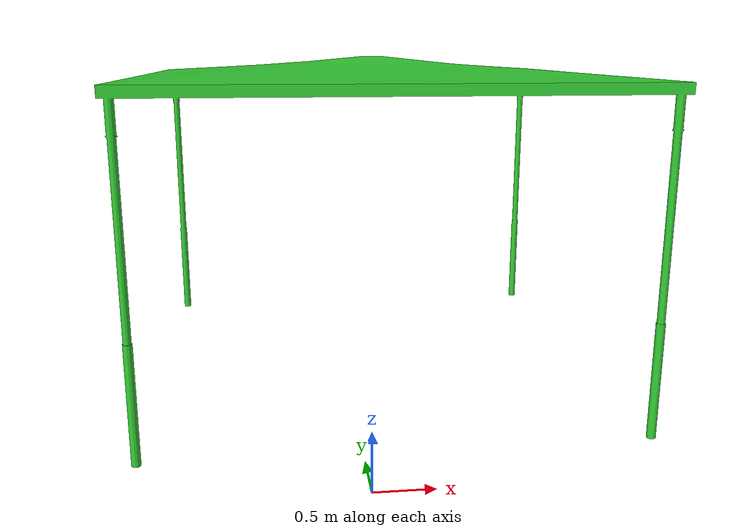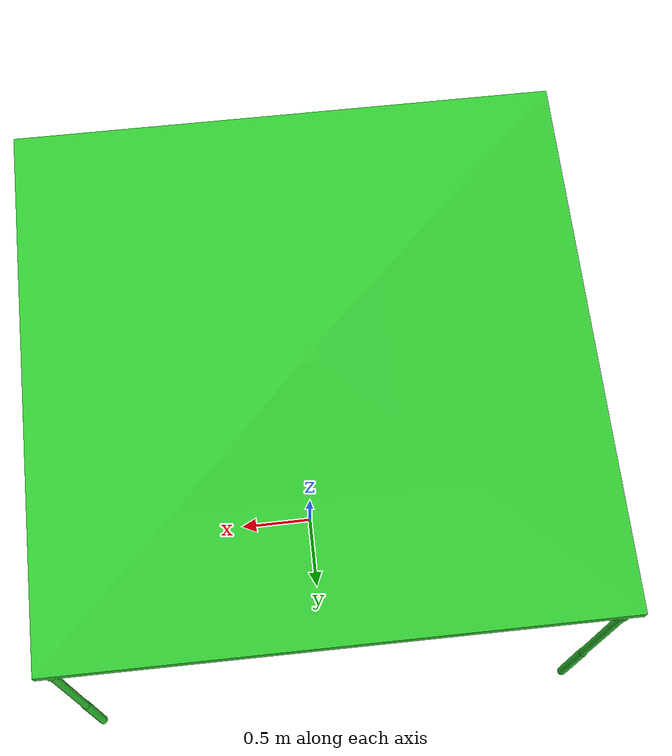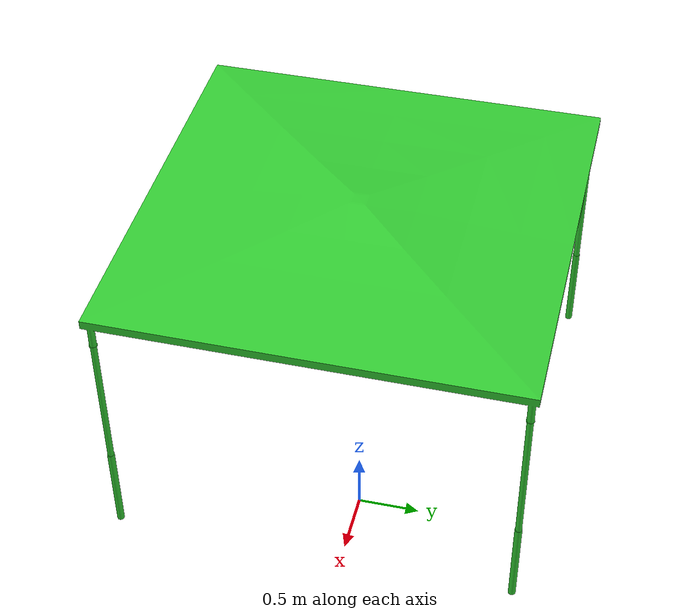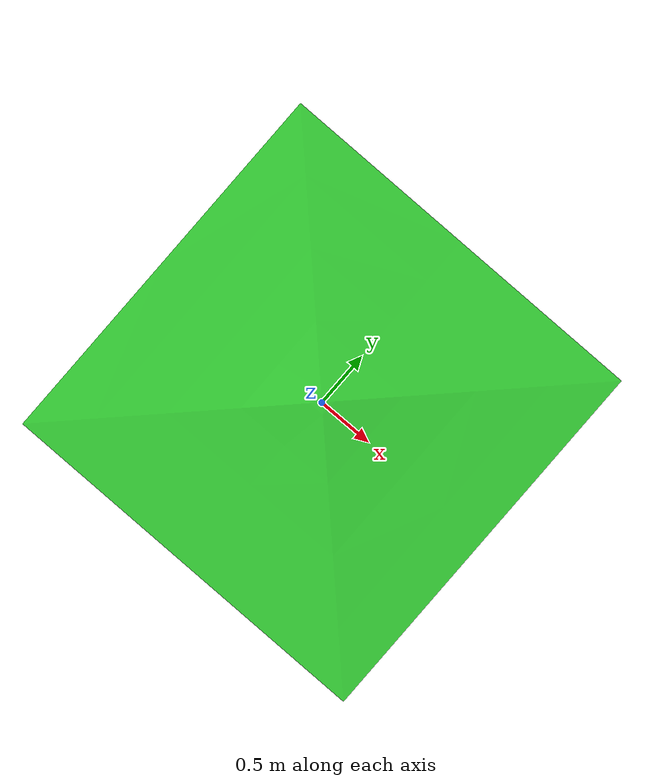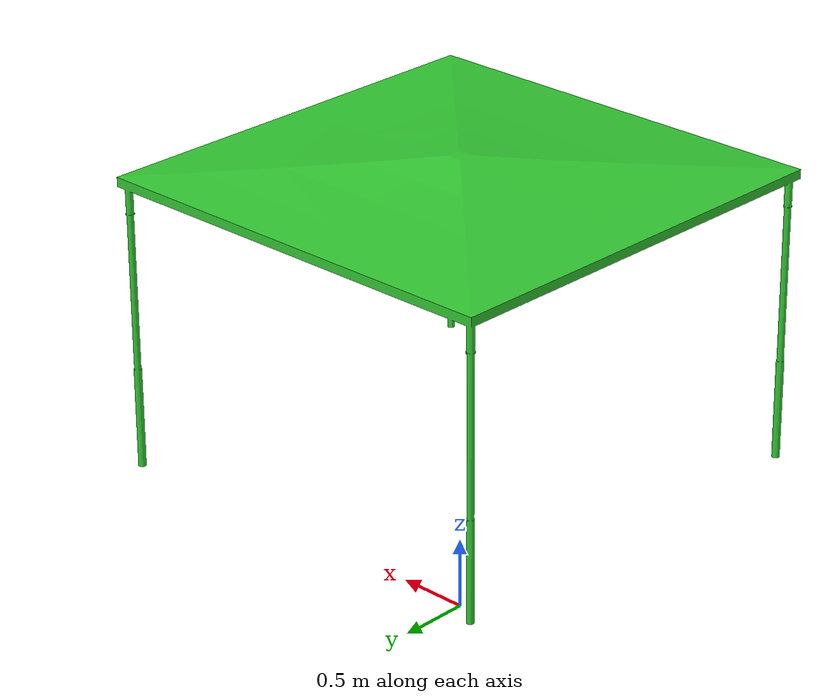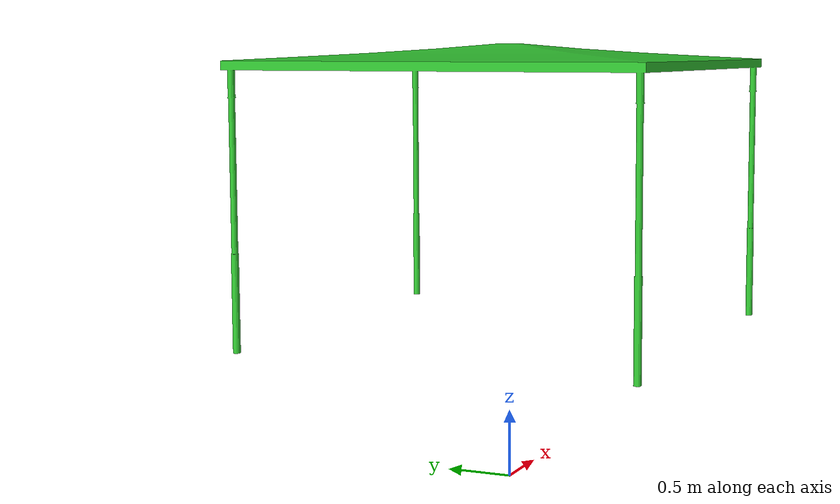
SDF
<?xml version="1.0"?>
<sdf version="1.6">
  <model name="tent">
    <static>true</static>
    <link name="base_link">
      <visual name="visual">
        <geometry>
           <mesh>
            <uri>mesh/tent.dae</uri>
          </mesh>
        </geometry>
        <material>
          <ambient>0.2 0.8 0.2 1.0</ambient>
          <diffuse>0.2 0.8 0.2 1.0</diffuse>
          <specular>0.1 0.1 0.1 1.0</specular>
          <pbr>
            <metal>
              <albedo_map>mesh/tent.png</albedo_map>
            </metal>
          </pbr>
        </material>
      </visual>
      <collision name="collision">
        <pose>0 0 1.5 0 0 0</pose>
        <geometry>
          <box>
            <size>3.0 3.0 3.0</size>
          </box>
        </geometry>
      </collision>
    </link>
  </model>
</sdf>
